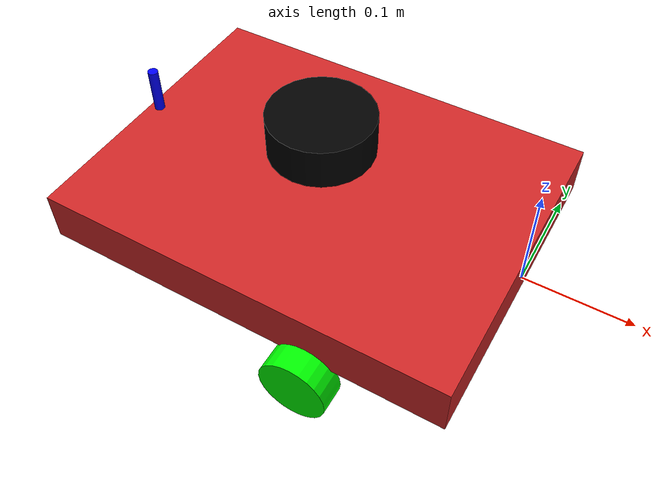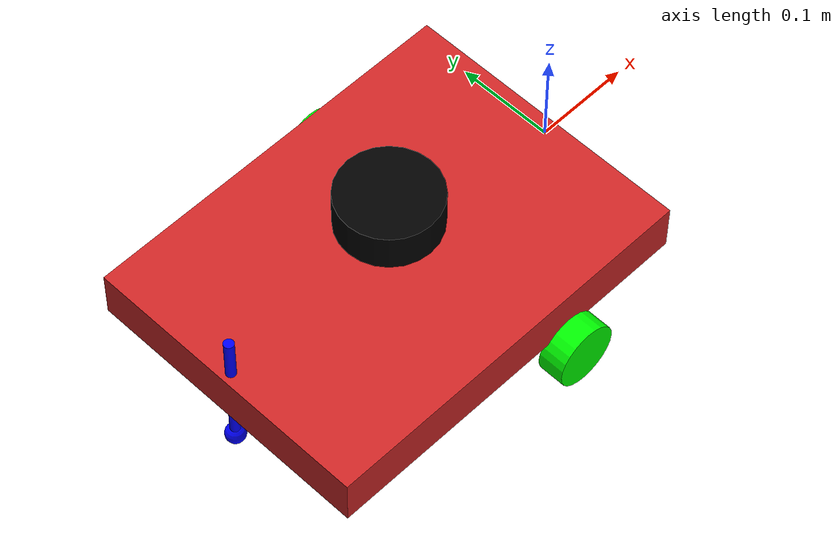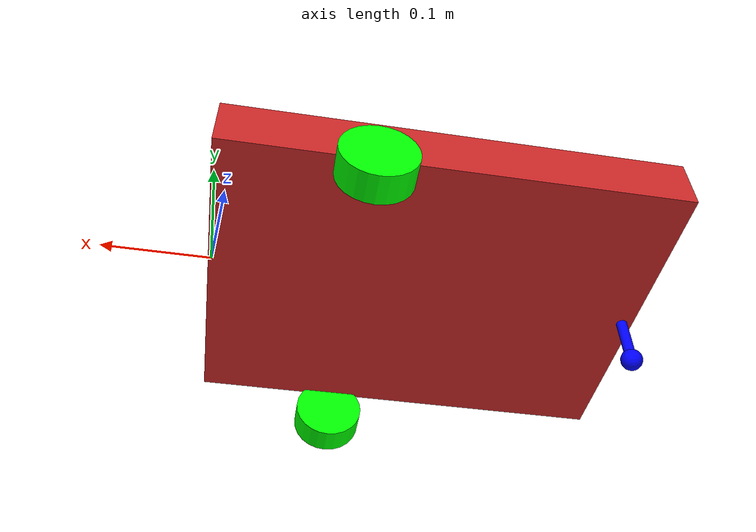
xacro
<?xml version="1.0"?>
<robot xmlns:xacro="http://www.ros.org/wiki/xacro" name="diff_bot">

    <xacro:include filename="properties.xacro"/>
    <xacro:include filename="inertial_macros.xacro"/>
    <xacro:include filename="chassis.xacro"/>
    <xacro:include filename="wheels.xacro"/>
    <xacro:include filename="caster_wheel.xacro"/>
    <xacro:include filename="gazebo_control.xacro"/>
    <xacro:include filename="control.xacro"/>
    <xacro:include filename="lidar.xacro"/>

    <!-- Base Link -->
    <link name="base_link"/>

    <!-- Base footprint Link -->
     <link name="base_footprint"/>
     <joint name="base_footprint_joint" type="fixed">
        <parent link="base_link"/>
        <child link="base_footprint"/>
     </joint>

</robot>

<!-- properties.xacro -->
<robot xmlns:xacro="http://www.ros.org/wiki/xacro">

    <!-- Chassis -->
    <xacro:property name="chassis_length" value="0.4"/>
    <xacro:property name="chassis_width" value="0.3"/>
    <xacro:property name="chassis_height" value="0.05"/>
    <xacro:property name="chassis_mass" value="2.0"/>
    <!-- Wheels -->
    <xacro:property name="wheel_offset_x" value="-0.1285"/>
    <xacro:property name="wheel_offset_y" value="0.160"/>
    <xacro:property name="wheel_offset_z" value="-0.045"/>
    <xacro:property name="wheel_thickness" value="0.027"/>
    <xacro:property name="wheel_radius" value="0.0325"/>
    <xacro:property name="wheel_mass" value="0.037"/>
    <!-- Caster Wheel -->
    <xacro:property name="caster_wheel_radius" value="0.01"/>
    <xacro:property name="caster_wheel_mass" value="0.01"/>
    <xacro:property name="caster_wheel_offset_x" value="-0.190"/>
    <xacro:property name="caster_wheel_offset_z" value="-0.070"/>

    <!-- Colors -->
     <material name="white">
        <color rgba="1.0 1.0 1.0 1.0"/>
     </material>

     <material name="red">
        <color rgba="1.0 0.0 0.0 1.0"/>
     </material>

     <material name="green">
        <color rgba="0.0 1.0 0.0 1.0"/>
     </material>

     <material name="blue">
        <color rgba="0.0 0.0 1.0 1.0"/>
     </material>

     <material name="black">
        <color rgba="0.0 0.0 0.0 1.0"/>
     </material>
</robot>

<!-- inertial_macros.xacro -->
<robot xmlns:xacro="http://www.ros.org/wiki/xacro">

  <!-- Sphere Inertial Macro -->
  <xacro:macro name="inertial_sphere" params="mass radius">
    <inertial>
      <origin xyz="0 0 0" rpy="0 0 0"/>
      <mass value="${mass}"/>
      <inertia
        ixx="${(2.0/5.0) * mass * radius * radius}"
        ixy="0.0"
        ixz="0.0"
        iyy="${(2.0/5.0) * mass * radius * radius}"
        iyz="0.0"
        izz="${(2.0/5.0) * mass * radius * radius}" />
    </inertial>
  </xacro:macro>

  <!-- Box Inertial Macro -->
  <xacro:macro name="inertial_box" params="mass x y z">
    <inertial>
      <origin xyz="0 0 0" rpy="0 0 0"/>
      <mass value="${mass}"/>
      <inertia
        ixx="${(1.0/12.0) * mass * (y*y + z*z)}"
        ixy="0.0"
        ixz="0.0"
        iyy="${(1.0/12.0) * mass * (x*x + z*z)}"
        iyz="0.0"
        izz="${(1.0/12.0) * mass * (x*x + y*y)}" />
    </inertial>
  </xacro:macro>

  <!-- Cylinder Inertial Macro -->
  <xacro:macro name="inertial_cylinder" params="mass length radius">
    <inertial>
      <origin xyz="0 0 0" rpy="0 0 0"/>
      <mass value="${mass}"/>
      <inertia
        ixx="${(1.0/12.0) * mass * (3 * radius * radius + length * length)}"
        ixy="0.0"
        ixz="0.0"
        iyy="${(1.0/12.0) * mass * (3 * radius * radius + length * length)}"
        iyz="0.0"
        izz="${0.5 * mass * radius * radius}" />
    </inertial>
  </xacro:macro>

</robot>

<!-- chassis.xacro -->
<robot xmlns:xacro="http://www.ros.org/wiki/xacro">

    <!-- Gazebo Colors -->
    <gazebo reference="chassis_link">
        <material>
            Gazebo/Red
        </material>
    </gazebo>

    <!-- Chassis Link -->
    <link name="chassis_link">
        <visual>
            <geometry>
                <box size="${chassis_length} ${chassis_width} ${chassis_height}"/>
                <origin xyz="${chassis_length/2} 0.0 ${chassis_height}" rpy="0.0 0.0 0.0"/>
            </geometry>
        </visual>
        <collision>
            <geometry>
                <box size="${chassis_length} ${chassis_width} ${chassis_height}"/>
                <origin xyz="${chassis_length/2} 0.0 ${chassis_height}" rpy="0.0 0.0 0.0"/>
            </geometry>
        </collision>
        <xacro:inertial_box mass="2" x="0.4" y="0.3" z="0.11"/>
        <origin xyz="${chassis_length/2} 0.0 ${chassis_height}" rpy="0.0 0.0 0.0"/>
    </link>

    <joint name="chassis_joint" type="fixed">
        <parent link="base_link"/>
        <child link="chassis_link"/>
        <origin xyz="-0.2 0.0 0.0" rpy="0.0 0.0 0.0"/>
    </joint>
</robot>

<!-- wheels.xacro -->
<robot xmlns:xacro="http://www.ros.org/wiki/xacro">
    <!-- Gazebo Colors -->
    <gazebo reference="left_wheel_link">
        <material>
            Gazebo/Black
        </material>
    </gazebo>
    <gazebo reference="right_wheel_link">
        <material>
            Gazebo/Black
        </material>
    </gazebo>

    <xacro:macro name="wheel_link" params="link_name">
        <link name="${link_name}">
            <visual>
                <geometry>
                    <cylinder radius="${wheel_radius}" length="${wheel_thickness}"/>
                </geometry>
                <material name="green"/>
            </visual>
            <collision>
                <geometry>
                    <sphere radius="${wheel_radius}"/>
                </geometry>
            </collision>
            <xacro:inertial_cylinder mass="${wheel_mass}" length="${wheel_thickness}" radius="${wheel_radius}"/>
        </link>
    </xacro:macro>

    <!-- Wheel Joint Macro -->
    <xacro:macro name="wheel_joint" params="joint_name wheel_name x y z roll">
    <joint name="${joint_name}" type="continuous">
        <origin xyz="${x} ${y} ${z}" rpy="${roll} 0.0 0.0"/>
        <parent link="base_link"/>
        <child link="${wheel_name}"/>
        <axis xyz="0.0 0.0 1.0"/>
    </joint>
    </xacro:macro>

    <!-- Right Wheel -->
    <xacro:wheel_link link_name="right_wheel_link"/>
    <xacro:wheel_joint
        joint_name="right_wheel_joint"
        wheel_name="right_wheel_link"
        x="${wheel_offset_x}"
        y="${wheel_offset_y}"
        z="${wheel_offset_z}"
        roll="${pi/2}"/>

    <!-- Left Wheel -->
    <xacro:wheel_link link_name="left_wheel_link"/>
    <xacro:wheel_joint
        joint_name="left_wheel_joint"
        wheel_name="left_wheel_link"
        x="${wheel_offset_x}"
        y="-${wheel_offset_y}"
        z="${wheel_offset_z}"
        roll="${pi/2}"/>
</robot>

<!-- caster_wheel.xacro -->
<robot xmlns:xacro="http://www.ros.org/wiki/xacro">

    <!-- Gazebo Colors -->
    <gazebo reference="caster_wheel_link">
        <material>
            Gazebo/Blue
        </material>
    </gazebo>

    <gazebo reference="caster_holder">
        <material>
            Gazebo/Blue
        </material>
    </gazebo>
    <!-- Caster Wheel Link -->
     <link name="caster_wheel_link">
        <visual>
            <origin xyz="0.0 0.0 0.0" rpy="0.0 0.0 0.0"/>
            <geometry>
                <sphere radius="${caster_wheel_radius}"/>
            </geometry>
            <material name="blue"/>
        </visual>
        <collision>
            <origin xyz="0.0 0.0 0.0" rpy="0.0 0.0 0.0"/>
            <geometry>
                <sphere radius="${caster_wheel_radius}"/>
            </geometry>
        </collision>
        <xacro:inertial_sphere mass="${caster_wheel_mass}" radius="${caster_wheel_radius}"/>
     </link>

     <!-- Caster Wheel Joint -->
      <joint name="caster_wheel_joint" type="fixed">
        <origin xyz="${caster_wheel_offset_x} 0.0 ${caster_wheel_offset_z}" rpy="0.0 0.0 0.0"/>
        <parent link="chassis_link"/>
        <child link="caster_wheel_link"/>
      </joint>

      <!-- Caster Holder (Only for visuals) -->
      <link name="caster_holder">
            <visual>
                <geometry>
                    <cylinder radius="${caster_wheel_radius*0.5}" length="${caster_wheel_offset_z*2}"/>
                </geometry>
                <material name="blue"/>
            </visual>
      </link>
      <joint name="holder_joint" type="fixed">
            <origin xyz="${caster_wheel_offset_x} 0.0 0.0" rpy="0.0 0.0 0.0"/>
            <parent link="chassis_link"/>
            <child link="caster_holder"/>
      </joint>
      <gazebo reference="caster_wheel_link">
        <mu1 value="0.001"/>
        <mu2 value="0.002"/>
      </gazebo>
</robot>

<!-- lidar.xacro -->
<robot xmlns:xacro="http://www.ros.org/wiki/xacro">

  <!-- LiDAR Frame -->
  <link name="laser_frame">
    <visual>
      <geometry>
        <cylinder radius="0.05" length="0.04"/>
      </geometry>
      <material name="black"/>
    </visual>
  </link>

  <!-- Fixed Joint to Mount LiDAR -->
  <joint name="laser_joint" type="fixed">
    <origin xyz="0.0 0 0.08" rpy="0 0 0"/>
    <parent link="chassis_link"/> <!-- Make sure chassis_link is defined elsewhere -->
    <child link="laser_frame"/>
  </joint>

  <!-- LiDAR Sensor Plugin (merged block) -->
  <gazebo reference="laser_frame">
    <material>Gazebo/Black</material>

    <sensor name="laser" type="ray">
      <pose>0 0 0.1 0 0 0</pose>
      <visualize>false</visualize>
      <update_rate>100.0</update_rate>

      <ray>
        <scan>
          <horizontal>
            <samples>360</samples>
            <min_angle>-3.14</min_angle>
            <max_angle>3.14</max_angle>
          </horizontal>
        </scan>
        <range>
          <min>0.3</min>
          <max>12.0</max>
        </range>
      </ray>

      <plugin name="lidar_controller" filename="libgazebo_ros_ray_sensor.so">
        <ros>
          <argument>~/out:=scan</argument>
        </ros>
        <output_type>sensor_msgs/LaserScan</output_type>
        <frame_name>laser_frame</frame_name>
      </plugin>

    </sensor>
  </gazebo>

</robot>
